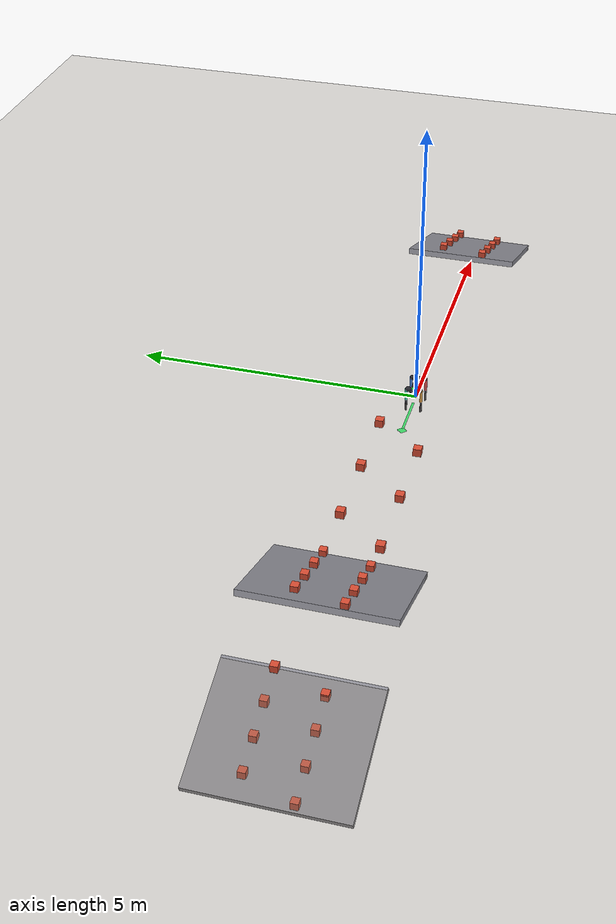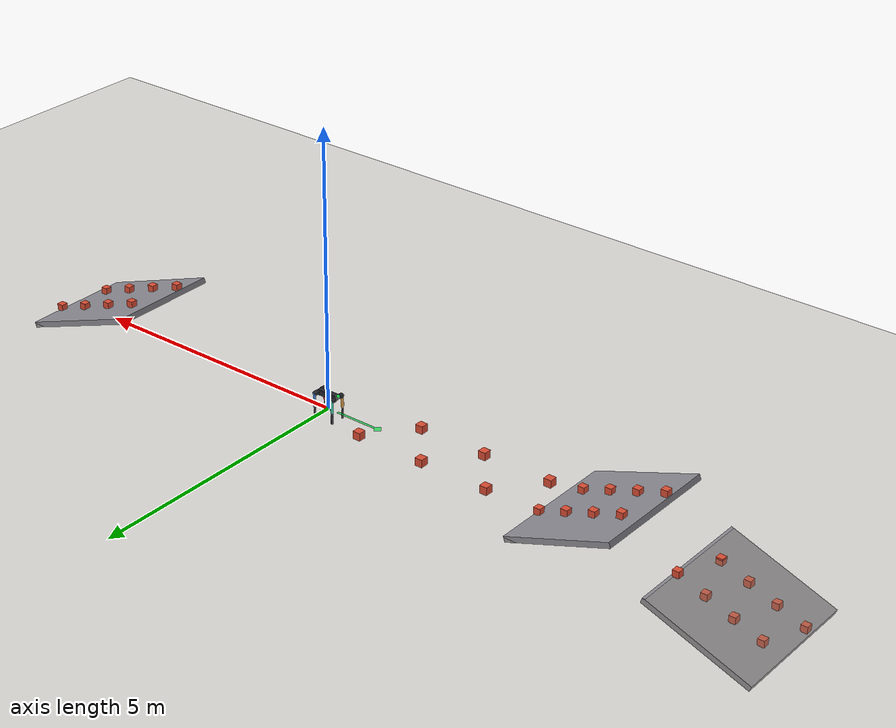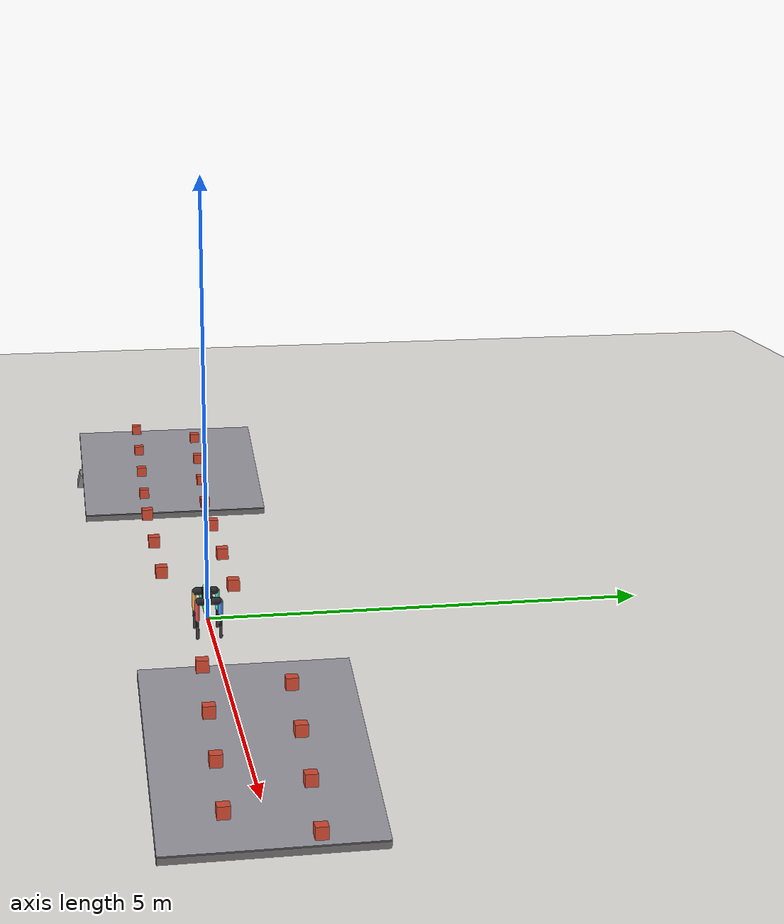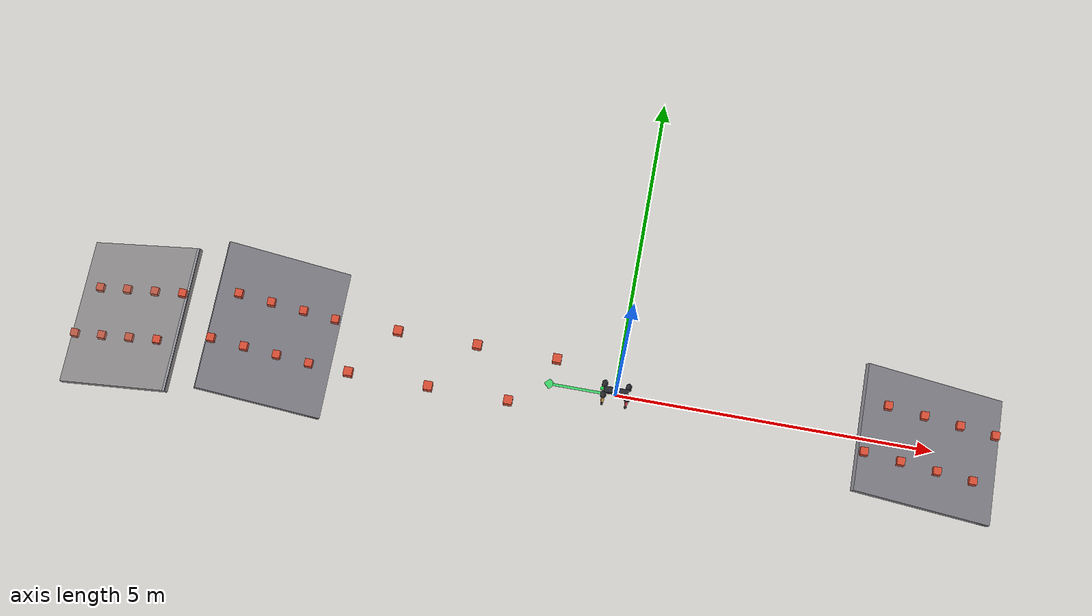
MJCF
<mujoco model="go1">

  <compiler angle="radian" autolimits="true" />
  <option gravity="0 0 -9.81" timestep="0.002" iterations="50" tolerance="1e-10" cone="elliptic" impratio="100" />

  <default>

    <joint damping="2.0" frictionloss="0.2" armature="0.01" />
    <geom contype="1" conaffinity="1" condim="3" friction="0.6 0.02 0.001" solref="0.005 1" solimp="0.98 0.99 0.001" />
    <position kp="300" ctrlrange="-3.14 3.14" forcelimited="true" forcerange="-33.5 33.5" />

    <default class="hip_joint">
      <joint damping="1.0" frictionloss="0.2" armature="0.01" />
    </default>

    <default class="foot">
      <geom condim="6" friction="0.8 0.02 0.01" solimp="0.015 1 0.023" solref="0.005 1" />
    </default>
  </default>

  <asset>

    <texture name="sky" type="skybox" builtin="gradient" rgb1="0.45 0.60 0.85" rgb2="0.75 0.85 0.95" width="512" height="512" mark="random" markrgb="1 1 1" random="0.01" />

    <texture name="ground_tex" type="2d" builtin="flat" rgb1="0.72 0.70 0.66" rgb2="0.68 0.66 0.62" width="512" height="512" mark="random" markrgb="0.65 0.63 0.60" random="0.05" />
    <material name="floor_mat" texture="ground_tex" texrepeat="12 12" texuniform="true" reflectance="0.02" rgba="0.75 0.73 0.70 1" />
    <material name="body_mat" rgba="0.15 0.15 0.18 1" reflectance="0.05" />
    <material name="leg_mat" rgba="0.12 0.12 0.15 1" reflectance="0.03" />
  </asset>

  <worldbody>
    <light name="sun" pos="5 3 12" dir="-0.3 -0.2 -1" diffuse="1.2 1.15 1.0" specular="0.5 0.5 0.4" castshadow="true" />
    <light name="ambient" pos="0 0 10" dir="0 0 -1" diffuse="0.35 0.38 0.45" specular="0 0 0" castshadow="false" />
    <light name="fill" pos="-5 -3 6" dir="0.3 0.2 -1" diffuse="0.25 0.25 0.30" castshadow="false" />

    <geom name="floor" type="plane" size="30 30 0.1" material="floor_mat" condim="6" friction="0.8 0.02 0.01" />

    <geom name="fwd_arrow_shaft" type="box" size="0.4 0.02 0.003" pos="-0.6 0 0.003" rgba="0.1 0.85 0.3 0.8" contype="0" conaffinity="0" />
    <geom name="fwd_arrow_head" type="box" size="0.06 0.06 0.003" pos="-1.05 0 0.003" euler="0 0 0.785" rgba="0.1 0.85 0.3 0.8" contype="0" conaffinity="0" />

    <body name="trunk" pos="0 0 0.27">
      <freejoint name="root" />
      <geom name="trunk" type="box" size="0.1881 0.0475 0.048" mass="9.041" material="body_mat" />
      <site name="imu" pos="0 0 0" size="0.005" />

      <geom name="head_marker" type="sphere" size="0.03" pos="-0.22 0 0.04" rgba="0.1 0.95 0.3 1" contype="0" conaffinity="0" mass="0.001" />

      <body name="FL_hip" pos="0.1881 0.0472 0">
        <joint name="FL_hip_joint" type="hinge" axis="1 0 0" range="-0.863 0.863" class="hip_joint" />
        <geom type="capsule" size="0.044 0.020" pos="0 0.040 0" euler="1.5708 0 0" mass="0.591" material="body_mat" />
        <body name="FL_thigh" pos="0 0.0838 0">
          <joint name="FL_thigh_joint" type="hinge" axis="0 -1 0" range="-0.686 4.501" />
          <geom type="capsule" size="0.025" fromto="0 0 0 0 0 -0.213" mass="0.921" material="leg_mat" rgba="0.30 0.55 0.90 1" />
          <body name="FL_calf" pos="0 0 -0.213">
            <joint name="FL_calf_joint" type="hinge" axis="0 -1 0" range="-2.818 -0.888" />
            <geom type="capsule" size="0.019" fromto="0 0 0 0 0 -0.213" mass="0.135" material="leg_mat" />
            <body name="FL_foot" pos="0 0 -0.213">
              <geom name="FL_foot_geom" type="sphere" size="0.0165" mass="0.06" rgba="0.30 0.55 0.90 1" class="foot" />
            </body>
          </body>
        </body>
      </body>

      <body name="FR_hip" pos="0.1881 -0.0472 0">
        <joint name="FR_hip_joint" type="hinge" axis="-1 0 0" range="-0.863 0.863" class="hip_joint" />
        <geom type="capsule" size="0.044 0.020" pos="0 -0.040 0" euler="1.5708 0 0" mass="0.591" material="body_mat" />
        <body name="FR_thigh" pos="0 -0.0838 0">
          <joint name="FR_thigh_joint" type="hinge" axis="0 -1 0" range="-0.686 4.501" />
          <geom type="capsule" size="0.025" fromto="0 0 0 0 0 -0.213" mass="0.921" material="leg_mat" rgba="0.90 0.33 0.33 1" />
          <body name="FR_calf" pos="0 0 -0.213">
            <joint name="FR_calf_joint" type="hinge" axis="0 -1 0" range="-2.818 -0.888" />
            <geom type="capsule" size="0.019" fromto="0 0 0 0 0 -0.213" mass="0.135" material="leg_mat" />
            <body name="FR_foot" pos="0 0 -0.213">
              <geom name="FR_foot_geom" type="sphere" size="0.0165" mass="0.06" rgba="0.90 0.33 0.33 1" class="foot" />
            </body>
          </body>
        </body>
      </body>

      <body name="RL_hip" pos="-0.1881 0.0472 0">
        <joint name="RL_hip_joint" type="hinge" axis="1 0 0" range="-0.863 0.863" class="hip_joint" />
        <geom type="capsule" size="0.044 0.020" pos="0 0.040 0" euler="1.5708 0 0" mass="0.591" material="body_mat" />
        <body name="RL_thigh" pos="0 0.0838 0">
          <joint name="RL_thigh_joint" type="hinge" axis="0 -1 0" range="-0.686 4.501" />
          <geom type="capsule" size="0.025" fromto="0 0 0 0 0 -0.213" mass="0.921" material="leg_mat" rgba="0.30 0.90 0.75 1" />
          <body name="RL_calf" pos="0 0 -0.213">
            <joint name="RL_calf_joint" type="hinge" axis="0 -1 0" range="-2.818 -0.888" />
            <geom type="capsule" size="0.019" fromto="0 0 0 0 0 -0.213" mass="0.135" material="leg_mat" />
            <body name="RL_foot" pos="0 0 -0.213">
              <geom name="RL_foot_geom" type="sphere" size="0.0165" mass="0.06" rgba="0.30 0.90 0.75 1" class="foot" />
            </body>
          </body>
        </body>
      </body>

      <body name="RR_hip" pos="-0.1881 -0.0472 0">
        <joint name="RR_hip_joint" type="hinge" axis="-1 0 0" range="-0.863 0.863" class="hip_joint" />
        <geom type="capsule" size="0.044 0.020" pos="0 -0.040 0" euler="1.5708 0 0" mass="0.591" material="body_mat" />
        <body name="RR_thigh" pos="0 -0.0838 0">
          <joint name="RR_thigh_joint" type="hinge" axis="0 -1 0" range="-0.686 4.501" />
          <geom type="capsule" size="0.025" fromto="0 0 0 0 0 -0.213" mass="0.921" material="leg_mat" rgba="0.90 0.65 0.30 1" />
          <body name="RR_calf" pos="0 0 -0.213">
            <joint name="RR_calf_joint" type="hinge" axis="0 -1 0" range="-2.818 -0.888" />
            <geom type="capsule" size="0.019" fromto="0 0 0 0 0 -0.213" mass="0.135" material="leg_mat" />
            <body name="RR_foot" pos="0 0 -0.213">
              <geom name="RR_foot_geom" type="sphere" size="0.0165" mass="0.06" rgba="0.90 0.65 0.30 1" class="foot" />
            </body>
          </body>
        </body>
      </body>

    </body>
  <geom name="cadenza_obs_0" type="box" size="1 1.2 0.05" rgba="0.55 0.55 0.58 1" pos="-5.45679 0 0.295036" axisangle="0 1 0 0.349066" /><geom name="cadenza_obs_1" type="box" size="1 1.2 0.05" rgba="0.55 0.55 0.58 1" pos="-7.92259 0 -0.389005" axisangle="0 1 0 -0.349066" /><geom name="cadenza_obs_2" type="box" size="1.2 1 0.05" rgba="0.55 0.55 0.58 1" pos="4.85527 0 0.36344" axisangle="0 1 0 0.349066" /><geom name="cadenza_obs_3" type="box" size="1.2 1 0.05" rgba="0.55 0.55 0.58 1" pos="4.85527 0 0.36344" axisangle="0 1 0 0.349066" /><geom name="cadenza_obs_4" type="box" size="0.07 0.07 0.07" rgba="0.85 0.3 0.2 1" pos="-1 0.4 0.07" /><geom name="cadenza_obs_5" type="box" size="0.07 0.07 0.07" rgba="0.85 0.3 0.2 1" pos="-1.64 -0.4 0.07" /><geom name="cadenza_obs_6" type="box" size="0.07 0.07 0.07" rgba="0.85 0.3 0.2 1" pos="-2.28 0.4 0.07" /><geom name="cadenza_obs_7" type="box" size="0.07 0.07 0.07" rgba="0.85 0.3 0.2 1" pos="-2.92 -0.4 0.07" /><geom name="cadenza_obs_8" type="box" size="0.07 0.07 0.07" rgba="0.85 0.3 0.2 1" pos="-3.56 0.4 0.07" /><geom name="cadenza_obs_9" type="box" size="0.07 0.07 0.07" rgba="0.85 0.3 0.2 1" pos="-4.2 -0.4 0.07" /><geom name="cadenza_obs_10" type="box" size="0.06 0.06 0.06" rgba="0.85 0.3 0.2 1" pos="-4.57518 0.4 0.0962123" /><geom name="cadenza_obs_11" type="box" size="0.06 0.06 0.06" rgba="0.85 0.3 0.2 1" pos="-4.82218 -0.4 0.186115" /><geom name="cadenza_obs_12" type="box" size="0.06 0.06 0.06" rgba="0.85 0.3 0.2 1" pos="-5.06919 0.4 0.276017" /><geom name="cadenza_obs_13" type="box" size="0.06 0.06 0.06" rgba="0.85 0.3 0.2 1" pos="-5.31619 -0.4 0.36592" /><geom name="cadenza_obs_14" type="box" size="0.06 0.06 0.06" rgba="0.85 0.3 0.2 1" pos="-5.5632 0.4 0.455822" /><geom name="cadenza_obs_15" type="box" size="0.06 0.06 0.06" rgba="0.85 0.3 0.2 1" pos="-5.8102 -0.4 0.545724" /><geom name="cadenza_obs_16" type="box" size="0.06 0.06 0.06" rgba="0.85 0.3 0.2 1" pos="-6.0572 0.4 0.635627" /><geom name="cadenza_obs_17" type="box" size="0.06 0.06 0.06" rgba="0.85 0.3 0.2 1" pos="-6.30421 -0.4 0.725529" /><geom name="cadenza_obs_18" type="box" size="0.06 0.06 0.06" rgba="0.85 0.3 0.2 1" pos="-7.07518 0.4 0.0414891" /><geom name="cadenza_obs_19" type="box" size="0.06 0.06 0.06" rgba="0.85 0.3 0.2 1" pos="-7.32218 -0.4 -0.0484134" /><geom name="cadenza_obs_20" type="box" size="0.06 0.06 0.06" rgba="0.85 0.3 0.2 1" pos="-7.56919 0.4 -0.138316" /><geom name="cadenza_obs_21" type="box" size="0.06 0.06 0.06" rgba="0.85 0.3 0.2 1" pos="-7.81619 -0.4 -0.228218" /><geom name="cadenza_obs_22" type="box" size="0.06 0.06 0.06" rgba="0.85 0.3 0.2 1" pos="-8.0632 0.4 -0.318121" /><geom name="cadenza_obs_23" type="box" size="0.06 0.06 0.06" rgba="0.85 0.3 0.2 1" pos="-8.3102 -0.4 -0.408023" /><geom name="cadenza_obs_24" type="box" size="0.06 0.06 0.06" rgba="0.85 0.3 0.2 1" pos="-8.5572 0.4 -0.497926" /><geom name="cadenza_obs_25" type="box" size="0.06 0.06 0.06" rgba="0.85 0.3 0.2 1" pos="-8.80421 -0.4 -0.587828" /><geom name="cadenza_obs_26" type="box" size="0.06 0.06 0.06" rgba="0.85 0.3 0.2 1" pos="5.92482 0.4 0.0962123" /><geom name="cadenza_obs_27" type="box" size="0.06 0.06 0.06" rgba="0.85 0.3 0.2 1" pos="5.62412 -0.4 0.205659" /><geom name="cadenza_obs_28" type="box" size="0.06 0.06 0.06" rgba="0.85 0.3 0.2 1" pos="5.32342 0.4 0.315105" /><geom name="cadenza_obs_29" type="box" size="0.06 0.06 0.06" rgba="0.85 0.3 0.2 1" pos="5.02272 -0.4 0.424552" /><geom name="cadenza_obs_30" type="box" size="0.06 0.06 0.06" rgba="0.85 0.3 0.2 1" pos="4.72202 0.4 0.533998" /><geom name="cadenza_obs_31" type="box" size="0.06 0.06 0.06" rgba="0.85 0.3 0.2 1" pos="4.42132 -0.4 0.643445" /><geom name="cadenza_obs_32" type="box" size="0.06 0.06 0.06" rgba="0.85 0.3 0.2 1" pos="4.12061 0.4 0.752891" /><geom name="cadenza_obs_33" type="box" size="0.06 0.06 0.06" rgba="0.85 0.3 0.2 1" pos="3.81991 -0.4 0.862337" /><geom name="cadenza_obs_34" type="box" size="0.06 0.06 0.06" rgba="0.85 0.3 0.2 1" pos="5.92482 0.4 0.0962123" /><geom name="cadenza_obs_35" type="box" size="0.06 0.06 0.06" rgba="0.85 0.3 0.2 1" pos="5.62412 -0.4 0.205659" /><geom name="cadenza_obs_36" type="box" size="0.06 0.06 0.06" rgba="0.85 0.3 0.2 1" pos="5.32342 0.4 0.315105" /><geom name="cadenza_obs_37" type="box" size="0.06 0.06 0.06" rgba="0.85 0.3 0.2 1" pos="5.02272 -0.4 0.424552" /><geom name="cadenza_obs_38" type="box" size="0.06 0.06 0.06" rgba="0.85 0.3 0.2 1" pos="4.72202 0.4 0.533998" /><geom name="cadenza_obs_39" type="box" size="0.06 0.06 0.06" rgba="0.85 0.3 0.2 1" pos="4.42132 -0.4 0.643445" /><geom name="cadenza_obs_40" type="box" size="0.06 0.06 0.06" rgba="0.85 0.3 0.2 1" pos="4.12061 0.4 0.752891" /><geom name="cadenza_obs_41" type="box" size="0.06 0.06 0.06" rgba="0.85 0.3 0.2 1" pos="3.81991 -0.4 0.862337" /></worldbody>

  <actuator>

    <position name="FL_hip" joint="FL_hip_joint" ctrlrange="-0.80 0.80" forcelimited="true" forcerange="-23.7 23.7" />
    <position name="FL_thigh" joint="FL_thigh_joint" ctrlrange="-0.50 2.50" forcelimited="true" forcerange="-23.7 23.7" />
    <position name="FL_calf" joint="FL_calf_joint" ctrlrange="-2.75 -0.60" forcelimited="true" forcerange="-35.55 35.55" />
    <position name="FR_hip" joint="FR_hip_joint" ctrlrange="-0.80 0.80" forcelimited="true" forcerange="-23.7 23.7" />
    <position name="FR_thigh" joint="FR_thigh_joint" ctrlrange="-0.50 2.50" forcelimited="true" forcerange="-23.7 23.7" />
    <position name="FR_calf" joint="FR_calf_joint" ctrlrange="-2.75 -0.60" forcelimited="true" forcerange="-35.55 35.55" />
    <position name="RL_hip" joint="RL_hip_joint" ctrlrange="-0.80 0.80" forcelimited="true" forcerange="-23.7 23.7" />
    <position name="RL_thigh" joint="RL_thigh_joint" ctrlrange="-0.50 2.50" forcelimited="true" forcerange="-23.7 23.7" />
    <position name="RL_calf" joint="RL_calf_joint" ctrlrange="-2.75 -0.60" forcelimited="true" forcerange="-35.55 35.55" />
    <position name="RR_hip" joint="RR_hip_joint" ctrlrange="-0.80 0.80" forcelimited="true" forcerange="-23.7 23.7" />
    <position name="RR_thigh" joint="RR_thigh_joint" ctrlrange="-0.50 2.50" forcelimited="true" forcerange="-23.7 23.7" />
    <position name="RR_calf" joint="RR_calf_joint" ctrlrange="-2.75 -0.60" forcelimited="true" forcerange="-35.55 35.55" />
  </actuator>

  <keyframe>
    <key name="home" qpos="0 0 0.27 1 0 0 0                            0 0.9 -1.8  0 0.9 -1.8                            0 0.9 -1.8  0 0.9 -1.8" />
  </keyframe>

</mujoco>
